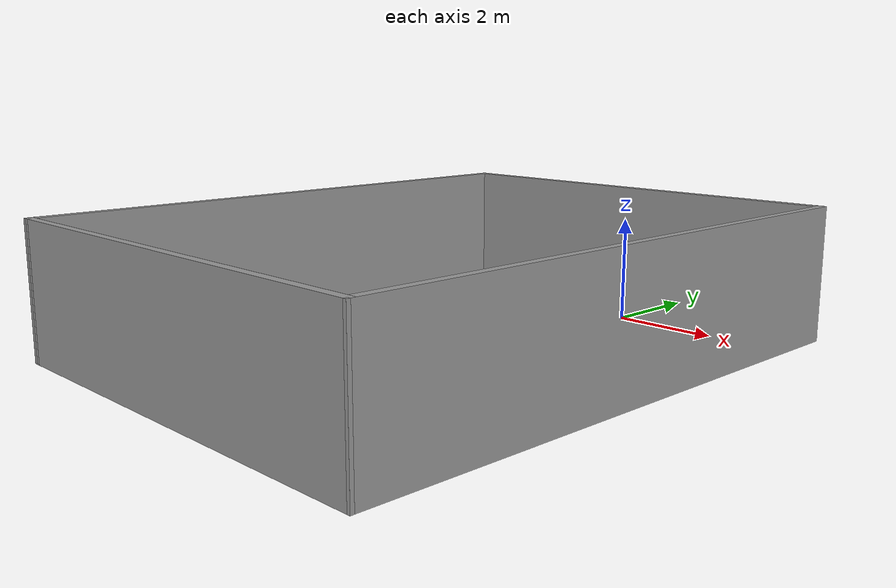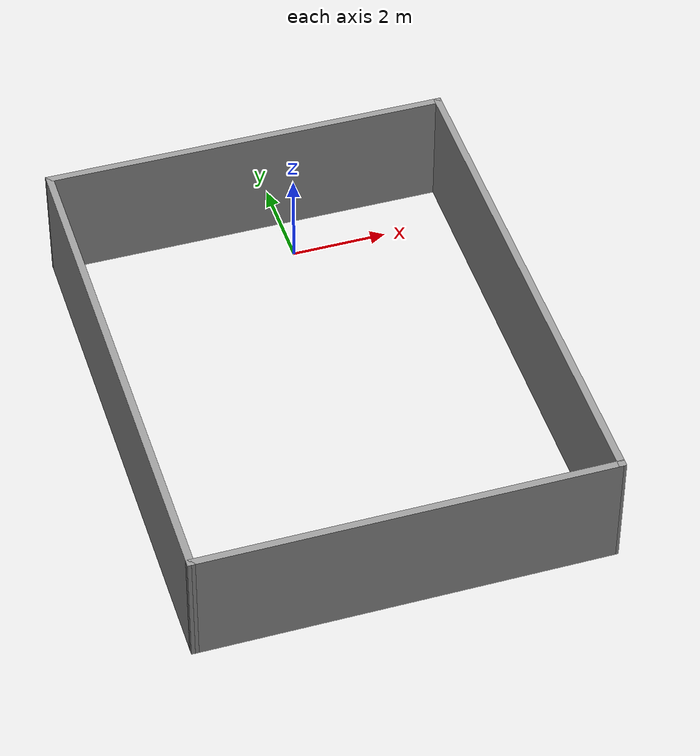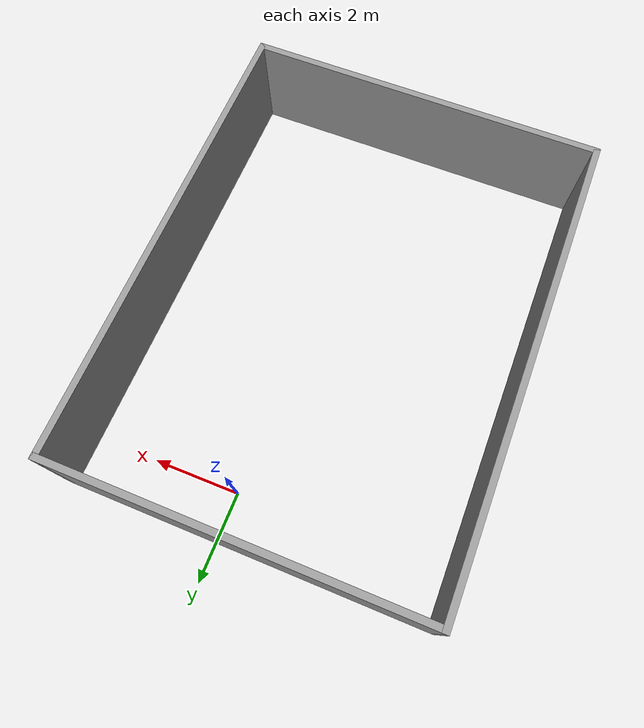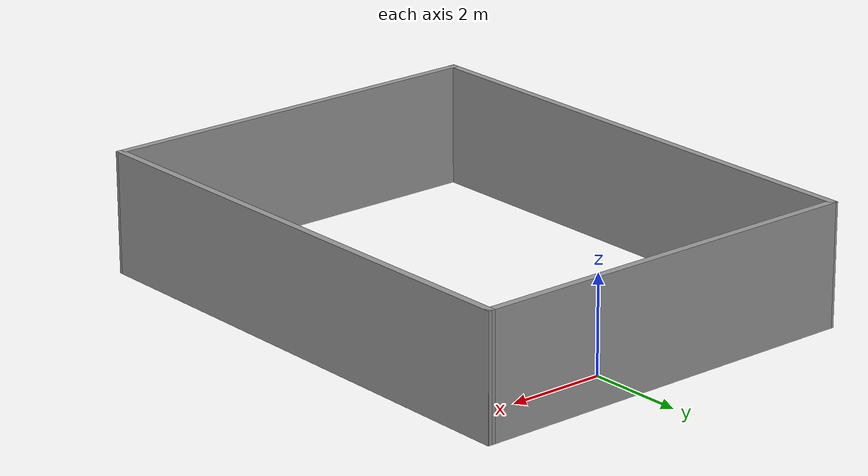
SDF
<?xml version='1.0'?>
<sdf version='1.7'>
  <model name='wall2'>
    <pose>-0.699826 -4.37321 0 0 -0 0</pose>
    <link name='Wall_10'>
      <collision name='Wall_10_Collision'>
        <geometry>
          <box>
            <size>8.5 0.15 2.5</size>
          </box>
        </geometry>
        <pose>0 0 1.25 0 -0 0</pose>
      </collision>
      <visual name='Wall_10_Visual'>
        <pose>0 0 1.25 0 -0 0</pose>
        <geometry>
          <box>
            <size>8.5 0.15 2.5</size>
          </box>
        </geometry>
        <material>
          <script>
            <uri>file://media/materials/scripts/gazebo.material</uri>
            <name>Gazebo/Grey</name>
          </script>
          <ambient>1 1 1 1</ambient>
        </material>
        <meta>
          <layer>0</layer>
        </meta>
      </visual>
      <pose>-0.009885 -5.42171 0 0 -0 3.14159</pose>
    </link>
    <link name='Wall_11'>
      <collision name='Wall_11_Collision'>
        <geometry>
          <box>
            <size>10.9934 0.15 2.5</size>
          </box>
        </geometry>
        <pose>0 0 1.25 0 -0 0</pose>
      </collision>
      <visual name='Wall_11_Visual'>
        <pose>0 0 1.25 0 -0 0</pose>
        <geometry>
          <box>
            <size>10.9934 0.15 2.5</size>
          </box>
        </geometry>
        <material>
          <script>
            <uri>file://media/materials/scripts/gazebo.material</uri>
            <name>Gazebo/Grey</name>
          </script>
          <ambient>1 1 1 1</ambient>
        </material>
        <meta>
          <layer>0</layer>
        </meta>
      </visual>
      <pose>-4.17831 0 0 0 -0 1.56958</pose>
    </link>
    <link name='Wall_15'>
      <collision name='Wall_15_Collision'>
        <geometry>
          <box>
            <size>10.9934 0.15 2.5</size>
          </box>
        </geometry>
        <pose>0 0 1.25 0 -0 0</pose>
      </collision>
      <visual name='Wall_15_Visual'>
        <pose>0 0 1.25 0 -0 0</pose>
        <geometry>
          <box>
            <size>10.9934 0.15 2.5</size>
          </box>
        </geometry>
        <material>
          <script>
            <uri>file://media/materials/scripts/gazebo.material</uri>
            <name>Gazebo/Grey</name>
          </script>
          <ambient>1 1 1 1</ambient>
        </material>
        <meta>
          <layer>0</layer>
        </meta>
      </visual>
      <pose>4.17498 0 0 0 -0 1.56898</pose>
    </link>
    <link name='Wall_16'>
      <collision name='Wall_16_Collision'>
        <geometry>
          <box>
            <size>8.5 0.15 2.5</size>
          </box>
        </geometry>
        <pose>0 0 1.25 0 -0 0</pose>
      </collision>
      <visual name='Wall_16_Visual'>
        <pose>0 0 1.25 0 -0 0</pose>
        <geometry>
          <box>
            <size>8.5 0.15 2.5</size>
          </box>
        </geometry>
        <material>
          <script>
            <uri>file://media/materials/scripts/gazebo.material</uri>
            <name>Gazebo/Grey</name>
          </script>
          <ambient>1 1 1 1</ambient>
        </material>
        <meta>
          <layer>0</layer>
        </meta>
      </visual>
      <pose>0.003265 5.42171 0 0 -0 3.14159</pose>
    </link>
    <static>1</static>
  </model>
</sdf>
